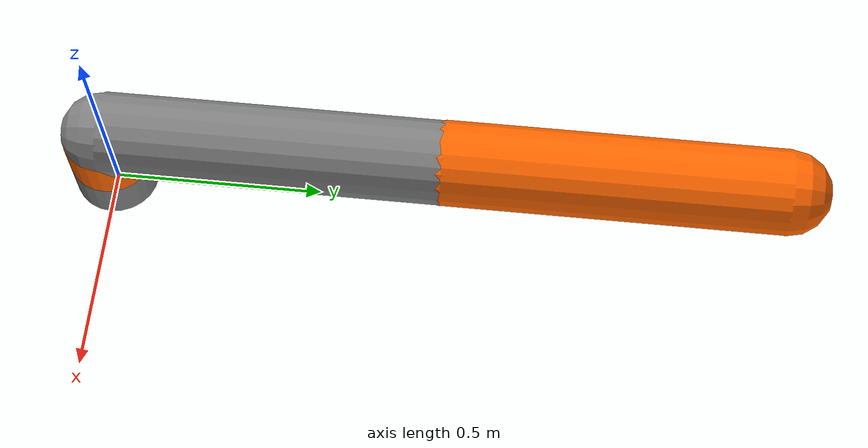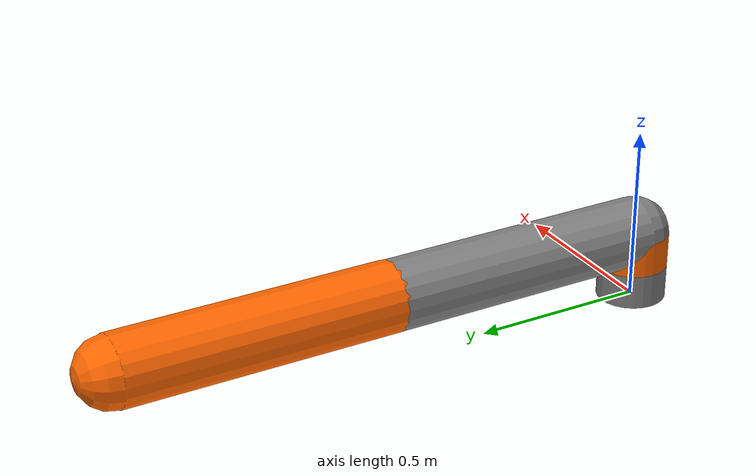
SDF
<?xml version="1.0"?>
<sdf version="1.7">
  <model name="AnthropomorphicArm">
    <!-- Manipulatator base -->
    <link name="AnthropomorphicArmBase">
      <pose>0 0 0.05 0 0 0</pose>
      <visual name="AnthropomorphicArmBaseVisual">
        <geometry>
          <cylinder>
            <radius>0.1</radius>
            <length>0.1</length>
          </cylinder>
        </geometry>
        <material>
          <ambient>0.5 0.5 0.5 1</ambient>
          <diffuse>0.5 0.5 0.5 1</diffuse>
          <specular>0.5 0.5 0.5 1</specular>
          <emissive>0.5 0.5 0.5 1</emissive>
        </material>
      </visual>
      <collision name="AnthropomorphicArmBaseCollision">
        <geometry>
          <cylinder>
            <radius>0.1</radius>
            <length>0.1</length>
          </cylinder>
        </geometry>
      </collision>
    </link>

    <!-- First link  -->
    <link name="AnthropomorphicArmLink1">
      <pose>0 0 0.15 0 0 0</pose>
      <visual name="AnthropomorphicArmLink1Visual">
        <geometry>
          <cylinder>
            <radius>0.1</radius>
            <length>0.1</length>
          </cylinder>
        </geometry>
        <material>
          <ambient>1 0.4 0 1</ambient>
          <diffuse>1 0.4 0 1</diffuse>
          <specular>1 0.4 0 1</specular>
          <emissive>1 0.4 0 1</emissive>
        </material>
      </visual>
      <collision name="AnthropomorphicArmLink1Collision">
        <geometry>
          <cylinder>
            <radius>0.1</radius>
            <length>0.1</length>
          </cylinder>
        </geometry>
      </collision>
    </link>

    <!-- First joint  -->
    <joint name="AnthropomorphicArmJoint1" type="revolute">
      <parent>AnthropomorphicArmBase</parent>
      <child>AnthropomorphicArmLink1</child>
      <axis>
        <xyz>0 0 1</xyz>
        <limit>
          <lower>-3.14159</lower>
          <upper>3.14159</upper>
        </limit>
      </axis>
    </joint>

    <!-- Second link  -->
    <link name="AnthropomorphicArmLink2">
      <pose>0 0 0.2 0 0 0</pose>
      <visual name="AnthropomorphicArmLink2Visual">
        <pose>0 0.4 0 1.57 0 0</pose>
        <geometry>
          <capsule>
            <radius>0.1</radius>
            <length>0.8</length>
          </capsule>
        </geometry>
        <material>
          <ambient>0.5 0.5 0.5 1</ambient>
          <diffuse>0.5 0.5 0.5 1</diffuse>
          <specular>0.5 0.5 0.5 1</specular>
          <emissive>0.5 0.5 0.5 1</emissive>
        </material>
      </visual>
      <collision name="AnthropomorphicArmLink2Collision">
        <pose>0 0.4 0 1.57 0 0</pose>
        <geometry>
          <capsule>
            <radius>0.1</radius>
            <length>0.8</length>
          </capsule>
        </geometry>
      </collision>
    </link>

    <!-- Second joint  -->
    <joint name="AnthropomorphicArmJoint2" type="revolute">
      <parent>AnthropomorphicArmLink1</parent>
      <child>AnthropomorphicArmLink2</child>
      <axis>
        <xyz>1 0 0</xyz>
        <limit>
          <lower>-3.14159</lower>
          <upper>3.14159</upper>
        </limit>
      </axis>
    </joint>

    <!-- Third link  -->
    <link name="AnthropomorphicArmLink3">
      <pose>0 0.8 0.2 0 0 0</pose>
      <visual name="AnthropomorphicArmLink3Visual">
        <pose>0 0.4 0 1.57 0 0</pose>
        <geometry>
          <capsule>
            <radius>0.101</radius>
            <length>0.8</length>
          </capsule>
        </geometry>
        <material>
          <ambient>1 0.4 0 1</ambient>
          <diffuse>1 0.4 0 1</diffuse>
          <specular>1 0.4 0 1</specular>
          <emissive>1 0.4 0 1</emissive>
        </material>
      </visual>
      <collision name="AnthropomorphicArmLink3Collision">
        <pose>0 0.4 0 1.57 0 0</pose>
        <geometry>
          <capsule>
            <radius>0.1</radius>
            <length>0.8</length>
          </capsule>
        </geometry>
      </collision>
    </link>

    <!-- Third joint  -->
    <joint name="AnthropomorphicArmJoint3" type="revolute">
      <parent>AnthropomorphicArmLink2</parent>
      <child>AnthropomorphicArmLink3</child>
      <axis>
        <xyz>1 0 0</xyz>
        <limit>
          <lower>-3.14159</lower>
          <upper>3.14159</upper>
        </limit>
      </axis>
    </joint>

    <!-- Manipulatator end effector -->
    <link name="AnthropomorphicArmEndEffector">
      <pose>0 1.6 0.2 0 0 0</pose>
    </link>

    <!-- End effector joint  -->
    <joint name="AnthropomorphicArmJointEndEffector" type="fixed">
      <parent>AnthropomorphicArmLink3</parent>
      <child>AnthropomorphicArmEndEffector</child>
    </joint>
  </model>
</sdf>
